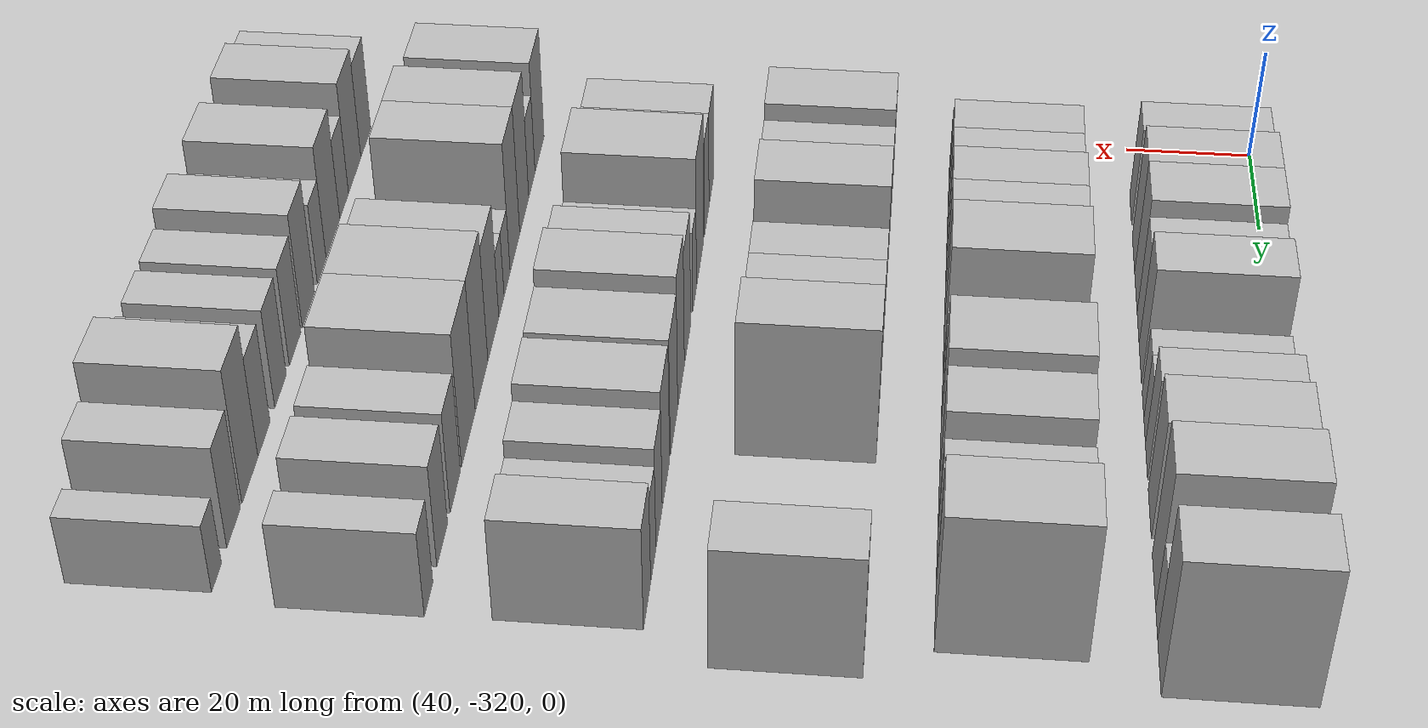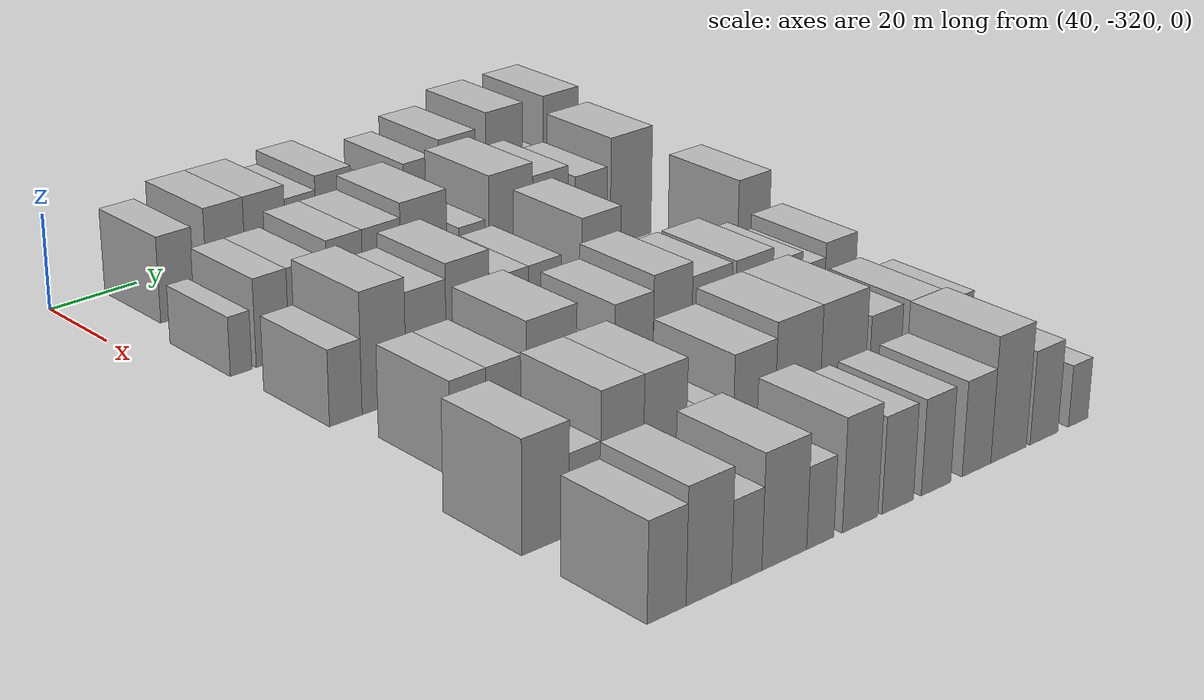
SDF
<sdf version="1.6">
 <world name="default">
  <model name="building_25">
   <static>1</static>
   <pose>50.0000 -303.4869 0 0.000000 0.000000 0.000000</pose>
   <link name="link">
    <pose>0 0 9.00 0 0 0</pose>
    <collision name="collision"><geometry><box><size>20.0000 8.0773 18.0000</size></box></geometry></collision>
    <visual name="visual">
     <cast_shadows>0</cast_shadows>
     <geometry><box><size>20.0000 8.0773 18.0000</size></box></geometry>
     <material>
      <script>
       <uri>model://HANNAS_wall/materials/scripts</uri>
       <uri>model://HANNAS_wall/materials/textures</uri>
       <name>vrc/HANNAS_wall</name>
      </script>
     </material>
    </visual>
   </link>
  </model>
  <model name="building_26">
   <static>1</static>
   <pose>50.0000 -291.7953 0 0.000000 0.000000 0.000000</pose>
   <link name="link">
    <pose>0 0 10.50 0 0 0</pose>
    <collision name="collision"><geometry><box><size>20.0000 9.3060 21.0000</size></box></geometry></collision>
    <visual name="visual">
     <cast_shadows>0</cast_shadows>
     <geometry><box><size>20.0000 9.3060 21.0000</size></box></geometry>
     <material>
      <script>
       <uri>model://HANNAS_wall/materials/scripts</uri>
       <uri>model://HANNAS_wall/materials/textures</uri>
       <name>vrc/HANNAS_wall</name>
      </script>
     </material>
    </visual>
   </link>
  </model>
  <model name="building_27">
   <static>1</static>
   <pose>50.0000 -282.1680 0 0.000000 0.000000 0.000000</pose>
   <link name="link">
    <pose>0 0 10.50 0 0 0</pose>
    <collision name="collision"><geometry><box><size>20.0000 9.9487 21.0000</size></box></geometry></collision>
    <visual name="visual">
     <cast_shadows>0</cast_shadows>
     <geometry><box><size>20.0000 9.9487 21.0000</size></box></geometry>
     <material>
      <script>
       <uri>model://HANNAS_wall/materials/scripts</uri>
       <uri>model://HANNAS_wall/materials/textures</uri>
       <name>vrc/HANNAS_wall</name>
      </script>
     </material>
    </visual>
   </link>
  </model>
  <model name="building_28">
   <static>1</static>
   <pose>50.0000 -273.3792 0 0.000000 0.000000 0.000000</pose>
   <link name="link">
    <pose>0 0 9.00 0 0 0</pose>
    <collision name="collision"><geometry><box><size>20.0000 7.6288 18.0000</size></box></geometry></collision>
    <visual name="visual">
     <cast_shadows>0</cast_shadows>
     <geometry><box><size>20.0000 7.6288 18.0000</size></box></geometry>
     <material>
      <script>
       <uri>model://HANNAS_wall/materials/scripts</uri>
       <uri>model://HANNAS_wall/materials/textures</uri>
       <name>vrc/HANNAS_wall</name>
      </script>
     </material>
    </visual>
   </link>
  </model>
  <model name="building_29">
   <static>1</static>
   <pose>50.0000 -265.0334 0 0.000000 0.000000 0.000000</pose>
   <link name="link">
    <pose>0 0 10.50 0 0 0</pose>
    <collision name="collision"><geometry><box><size>20.0000 9.0628 21.0000</size></box></geometry></collision>
    <visual name="visual">
     <cast_shadows>0</cast_shadows>
     <geometry><box><size>20.0000 9.0628 21.0000</size></box></geometry>
     <material>
      <script>
       <uri>model://HANNAS_wall/materials/scripts</uri>
       <uri>model://HANNAS_wall/materials/textures</uri>
       <name>vrc/HANNAS_wall</name>
      </script>
     </material>
    </visual>
   </link>
  </model>
  <model name="building_30">
   <static>1</static>
   <pose>50.0000 -255.5705 0 0.000000 0.000000 0.000000</pose>
   <link name="link">
    <pose>0 0 6.00 0 0 0</pose>
    <collision name="collision"><geometry><box><size>20.0000 5.8630 12.0000</size></box></geometry></collision>
    <visual name="visual">
     <cast_shadows>0</cast_shadows>
     <geometry><box><size>20.0000 5.8630 12.0000</size></box></geometry>
     <material>
      <script>
       <uri>model://HANNAS_wall/materials/scripts</uri>
       <uri>model://HANNAS_wall/materials/textures</uri>
       <name>vrc/HANNAS_wall</name>
      </script>
     </material>
    </visual>
   </link>
  </model>
  <model name="building_31">
   <static>1</static>
   <pose>50.0000 -249.8530 0 0.000000 0.000000 0.000000</pose>
   <link name="link">
    <pose>0 0 6.00 0 0 0</pose>
    <collision name="collision"><geometry><box><size>20.0000 5.5720 12.0000</size></box></geometry></collision>
    <visual name="visual">
     <cast_shadows>0</cast_shadows>
     <geometry><box><size>20.0000 5.5720 12.0000</size></box></geometry>
     <material>
      <script>
       <uri>model://HANNAS_wall/materials/scripts</uri>
       <uri>model://HANNAS_wall/materials/textures</uri>
       <name>vrc/HANNAS_wall</name>
      </script>
     </material>
    </visual>
   </link>
  </model>
  <model name="building_32">
   <static>1</static>
   <pose>50.0000 -243.3581 0 0.000000 0.000000 0.000000</pose>
   <link name="link">
    <pose>0 0 9.00 0 0 0</pose>
    <collision name="collision"><geometry><box><size>20.0000 7.4179 18.0000</size></box></geometry></collision>
    <visual name="visual">
     <cast_shadows>0</cast_shadows>
     <geometry><box><size>20.0000 7.4179 18.0000</size></box></geometry>
     <material>
      <script>
       <uri>model://HANNAS_wall/materials/scripts</uri>
       <uri>model://HANNAS_wall/materials/textures</uri>
       <name>vrc/HANNAS_wall</name>
      </script>
     </material>
    </visual>
   </link>
  </model>
  <model name="building_33">
   <static>1</static>
   <pose>50.0000 -232.6826 0 0.000000 0.000000 0.000000</pose>
   <link name="link">
    <pose>0 0 10.50 0 0 0</pose>
    <collision name="collision"><geometry><box><size>20.0000 9.9332 21.0000</size></box></geometry></collision>
    <visual name="visual">
     <cast_shadows>0</cast_shadows>
     <geometry><box><size>20.0000 9.9332 21.0000</size></box></geometry>
     <material>
      <script>
       <uri>model://HANNAS_wall/materials/scripts</uri>
       <uri>model://HANNAS_wall/materials/textures</uri>
       <name>vrc/HANNAS_wall</name>
      </script>
     </material>
    </visual>
   </link>
  </model>
  <model name="building_34">
   <static>1</static>
   <pose>50.0000 -219.5905 0 0.000000 0.000000 0.000000</pose>
   <link name="link">
    <pose>0 0 12.00 0 0 0</pose>
    <collision name="collision"><geometry><box><size>20.0000 10.2508 24.0000</size></box></geometry></collision>
    <visual name="visual">
     <cast_shadows>0</cast_shadows>
     <geometry><box><size>20.0000 10.2508 24.0000</size></box></geometry>
     <material>
      <script>
       <uri>model://HANNAS_wall/materials/scripts</uri>
       <uri>model://HANNAS_wall/materials/textures</uri>
       <name>vrc/HANNAS_wall</name>
      </script>
     </material>
    </visual>
   </link>
  </model>
  <model name="building_35">
   <static>1</static>
   <pose>50.0000 -211.6037 0 0.000000 0.000000 0.000000</pose>
   <link name="link">
    <pose>0 0 6.00 0 0 0</pose>
    <collision name="collision"><geometry><box><size>20.0000 5.7229 12.0000</size></box></geometry></collision>
    <visual name="visual">
     <cast_shadows>0</cast_shadows>
     <geometry><box><size>20.0000 5.7229 12.0000</size></box></geometry>
     <material>
      <script>
       <uri>model://HANNAS_wall/materials/scripts</uri>
       <uri>model://HANNAS_wall/materials/textures</uri>
       <name>vrc/HANNAS_wall</name>
      </script>
     </material>
    </visual>
   </link>
  </model>
  <model name="building_36">
   <static>1</static>
   <pose>50.0000 -203.6641 0 0.000000 0.000000 0.000000</pose>
   <link name="link">
    <pose>0 0 12.00 0 0 0</pose>
    <collision name="collision"><geometry><box><size>20.0000 10.1561 24.0000</size></box></geometry></collision>
    <visual name="visual">
     <cast_shadows>0</cast_shadows>
     <geometry><box><size>20.0000 10.1561 24.0000</size></box></geometry>
     <material>
      <script>
       <uri>model://HANNAS_wall/materials/scripts</uri>
       <uri>model://HANNAS_wall/materials/textures</uri>
       <name>vrc/HANNAS_wall</name>
      </script>
     </material>
    </visual>
   </link>
  </model>
  <model name="building_141">
   <static>1</static>
   <pose>79.0000 -308.9826 0 0.000000 0.000000 0.000000</pose>
   <link name="link">
    <pose>0 0 6.00 0 0 0</pose>
    <collision name="collision"><geometry><box><size>20.0000 4.8721 12.0000</size></box></geometry></collision>
    <visual name="visual">
     <cast_shadows>0</cast_shadows>
     <geometry><box><size>20.0000 4.8721 12.0000</size></box></geometry>
     <material>
      <script>
       <uri>model://HANNAS_wall/materials/scripts</uri>
       <uri>model://HANNAS_wall/materials/textures</uri>
       <name>vrc/HANNAS_wall</name>
      </script>
     </material>
    </visual>
   </link>
  </model>
  <model name="building_142">
   <static>1</static>
   <pose>79.0000 -301.7202 0 0.000000 0.000000 0.000000</pose>
   <link name="link">
    <pose>0 0 9.00 0 0 0</pose>
    <collision name="collision"><geometry><box><size>20.0000 7.6529 18.0000</size></box></geometry></collision>
    <visual name="visual">
     <cast_shadows>0</cast_shadows>
     <geometry><box><size>20.0000 7.6529 18.0000</size></box></geometry>
     <material>
      <script>
       <uri>model://HANNAS_wall/materials/scripts</uri>
       <uri>model://HANNAS_wall/materials/textures</uri>
       <name>vrc/HANNAS_wall</name>
      </script>
     </material>
    </visual>
   </link>
  </model>
  <model name="building_143">
   <static>1</static>
   <pose>79.0000 -293.7317 0 0.000000 0.000000 0.000000</pose>
   <link name="link">
    <pose>0 0 9.00 0 0 0</pose>
    <collision name="collision"><geometry><box><size>20.0000 8.3240 18.0000</size></box></geometry></collision>
    <visual name="visual">
     <cast_shadows>0</cast_shadows>
     <geometry><box><size>20.0000 8.3240 18.0000</size></box></geometry>
     <material>
      <script>
       <uri>model://HANNAS_wall/materials/scripts</uri>
       <uri>model://HANNAS_wall/materials/textures</uri>
       <name>vrc/HANNAS_wall</name>
      </script>
     </material>
    </visual>
   </link>
  </model>
  <model name="building_144">
   <static>1</static>
   <pose>79.0000 -284.3257 0 0.000000 0.000000 0.000000</pose>
   <link name="link">
    <pose>0 0 10.50 0 0 0</pose>
    <collision name="collision"><geometry><box><size>20.0000 8.4880 21.0000</size></box></geometry></collision>
    <visual name="visual">
     <cast_shadows>0</cast_shadows>
     <geometry><box><size>20.0000 8.4880 21.0000</size></box></geometry>
     <material>
      <script>
       <uri>model://HANNAS_wall/materials/scripts</uri>
       <uri>model://HANNAS_wall/materials/textures</uri>
       <name>vrc/HANNAS_wall</name>
      </script>
     </material>
    </visual>
   </link>
  </model>
  <model name="building_145">
   <static>1</static>
   <pose>79.0000 -275.4408 0 0.000000 0.000000 0.000000</pose>
   <link name="link">
    <pose>0 0 10.50 0 0 0</pose>
    <collision name="collision"><geometry><box><size>20.0000 9.2820 21.0000</size></box></geometry></collision>
    <visual name="visual">
     <cast_shadows>0</cast_shadows>
     <geometry><box><size>20.0000 9.2820 21.0000</size></box></geometry>
     <material>
      <script>
       <uri>model://HANNAS_wall/materials/scripts</uri>
       <uri>model://HANNAS_wall/materials/textures</uri>
       <name>vrc/HANNAS_wall</name>
      </script>
     </material>
    </visual>
   </link>
  </model>
  <model name="building_146">
   <static>1</static>
   <pose>79.0000 -265.0329 0 0.000000 0.000000 0.000000</pose>
   <link name="link">
    <pose>0 0 12.00 0 0 0</pose>
    <collision name="collision"><geometry><box><size>20.0000 11.5339 24.0000</size></box></geometry></collision>
    <visual name="visual">
     <cast_shadows>0</cast_shadows>
     <geometry><box><size>20.0000 11.5339 24.0000</size></box></geometry>
     <material>
      <script>
       <uri>model://HANNAS_wall/materials/scripts</uri>
       <uri>model://HANNAS_wall/materials/textures</uri>
       <name>vrc/HANNAS_wall</name>
      </script>
     </material>
    </visual>
   </link>
  </model>
  <model name="building_147">
   <static>1</static>
   <pose>79.0000 -252.8595 0 0.000000 0.000000 0.000000</pose>
   <link name="link">
    <pose>0 0 7.50 0 0 0</pose>
    <collision name="collision"><geometry><box><size>20.0000 6.8130 15.0000</size></box></geometry></collision>
    <visual name="visual">
     <cast_shadows>0</cast_shadows>
     <geometry><box><size>20.0000 6.8130 15.0000</size></box></geometry>
     <material>
      <script>
       <uri>model://HANNAS_wall/materials/scripts</uri>
       <uri>model://HANNAS_wall/materials/textures</uri>
       <name>vrc/HANNAS_wall</name>
      </script>
     </material>
    </visual>
   </link>
  </model>
  <model name="building_148">
   <static>1</static>
   <pose>79.0000 -242.6879 0 0.000000 0.000000 0.000000</pose>
   <link name="link">
    <pose>0 0 12.00 0 0 0</pose>
    <collision name="collision"><geometry><box><size>20.0000 11.5302 24.0000</size></box></geometry></collision>
    <visual name="visual">
     <cast_shadows>0</cast_shadows>
     <geometry><box><size>20.0000 11.5302 24.0000</size></box></geometry>
     <material>
      <script>
       <uri>model://HANNAS_wall/materials/scripts</uri>
       <uri>model://HANNAS_wall/materials/textures</uri>
       <name>vrc/HANNAS_wall</name>
      </script>
     </material>
    </visual>
   </link>
  </model>
  <model name="building_149">
   <static>1</static>
   <pose>79.0000 -232.1672 0 0.000000 0.000000 0.000000</pose>
   <link name="link">
    <pose>0 0 10.50 0 0 0</pose>
    <collision name="collision"><geometry><box><size>20.0000 9.5111 21.0000</size></box></geometry></collision>
    <visual name="visual">
     <cast_shadows>0</cast_shadows>
     <geometry><box><size>20.0000 9.5111 21.0000</size></box></geometry>
     <material>
      <script>
       <uri>model://HANNAS_wall/materials/scripts</uri>
       <uri>model://HANNAS_wall/materials/textures</uri>
       <name>vrc/HANNAS_wall</name>
      </script>
     </material>
    </visual>
   </link>
  </model>
  <model name="building_150">
   <static>1</static>
   <pose>79.0000 -220.9929 0 0.000000 0.000000 0.000000</pose>
   <link name="link">
    <pose>0 0 9.00 0 0 0</pose>
    <collision name="collision"><geometry><box><size>20.0000 8.8375 18.0000</size></box></geometry></collision>
    <visual name="visual">
     <cast_shadows>0</cast_shadows>
     <geometry><box><size>20.0000 8.8375 18.0000</size></box></geometry>
     <material>
      <script>
       <uri>model://HANNAS_wall/materials/scripts</uri>
       <uri>model://HANNAS_wall/materials/textures</uri>
       <name>vrc/HANNAS_wall</name>
      </script>
     </material>
    </visual>
   </link>
  </model>
  <model name="building_151">
   <static>1</static>
   <pose>79.0000 -209.7387 0 0.000000 0.000000 0.000000</pose>
   <link name="link">
    <pose>0 0 12.00 0 0 0</pose>
    <collision name="collision"><geometry><box><size>20.0000 11.6710 24.0000</size></box></geometry></collision>
    <visual name="visual">
     <cast_shadows>0</cast_shadows>
     <geometry><box><size>20.0000 11.6710 24.0000</size></box></geometry>
     <material>
      <script>
       <uri>model://HANNAS_wall/materials/scripts</uri>
       <uri>model://HANNAS_wall/materials/textures</uri>
       <name>vrc/HANNAS_wall</name>
      </script>
     </material>
    </visual>
   </link>
  </model>
  <model name="building_250">
   <static>1</static>
   <pose>108.0000 -306.6481 0 0.000000 0.000000 0.000000</pose>
   <link name="link">
    <pose>0 0 7.50 0 0 0</pose>
    <collision name="collision"><geometry><box><size>20.0000 7.3241 15.0000</size></box></geometry></collision>
    <visual name="visual">
     <cast_shadows>0</cast_shadows>
     <geometry><box><size>20.0000 7.3241 15.0000</size></box></geometry>
     <material>
      <script>
       <uri>model://HANNAS_wall/materials/scripts</uri>
       <uri>model://HANNAS_wall/materials/textures</uri>
       <name>vrc/HANNAS_wall</name>
      </script>
     </material>
    </visual>
   </link>
  </model>
  <model name="building_251">
   <static>1</static>
   <pose>108.0000 -297.8866 0 0.000000 0.000000 0.000000</pose>
   <link name="link">
    <pose>0 0 12.00 0 0 0</pose>
    <collision name="collision"><geometry><box><size>20.0000 10.1990 24.0000</size></box></geometry></collision>
    <visual name="visual">
     <cast_shadows>0</cast_shadows>
     <geometry><box><size>20.0000 10.1990 24.0000</size></box></geometry>
     <material>
      <script>
       <uri>model://HANNAS_wall/materials/scripts</uri>
       <uri>model://HANNAS_wall/materials/textures</uri>
       <name>vrc/HANNAS_wall</name>
      </script>
     </material>
    </visual>
   </link>
  </model>
  <model name="building_252">
   <static>1</static>
   <pose>108.0000 -288.0495 0 0.000000 0.000000 0.000000</pose>
   <link name="link">
    <pose>0 0 10.50 0 0 0</pose>
    <collision name="collision"><geometry><box><size>20.0000 9.4752 21.0000</size></box></geometry></collision>
    <visual name="visual">
     <cast_shadows>0</cast_shadows>
     <geometry><box><size>20.0000 9.4752 21.0000</size></box></geometry>
     <material>
      <script>
       <uri>model://HANNAS_wall/materials/scripts</uri>
       <uri>model://HANNAS_wall/materials/textures</uri>
       <name>vrc/HANNAS_wall</name>
      </script>
     </material>
    </visual>
   </link>
  </model>
  <model name="building_253">
   <static>1</static>
   <pose>108.0000 -278.1364 0 0.000000 0.000000 0.000000</pose>
   <link name="link">
    <pose>0 0 12.00 0 0 0</pose>
    <collision name="collision"><geometry><box><size>20.0000 10.3509 24.0000</size></box></geometry></collision>
    <visual name="visual">
     <cast_shadows>0</cast_shadows>
     <geometry><box><size>20.0000 10.3509 24.0000</size></box></geometry>
     <material>
      <script>
       <uri>model://HANNAS_wall/materials/scripts</uri>
       <uri>model://HANNAS_wall/materials/textures</uri>
       <name>vrc/HANNAS_wall</name>
      </script>
     </material>
    </visual>
   </link>
  </model>
  <model name="building_254">
   <static>1</static>
   <pose>108.0000 -267.1380 0 0.000000 0.000000 0.000000</pose>
   <link name="link">
    <pose>0 0 9.00 0 0 0</pose>
    <collision name="collision"><geometry><box><size>20.0000 7.6460 18.0000</size></box></geometry></collision>
    <visual name="visual">
     <cast_shadows>0</cast_shadows>
     <geometry><box><size>20.0000 7.6460 18.0000</size></box></geometry>
     <material>
      <script>
       <uri>model://HANNAS_wall/materials/scripts</uri>
       <uri>model://HANNAS_wall/materials/textures</uri>
       <name>vrc/HANNAS_wall</name>
      </script>
     </material>
    </visual>
   </link>
  </model>
  <model name="building_255">
   <static>1</static>
   <pose>108.0000 -259.2166 0 0.000000 0.000000 0.000000</pose>
   <link name="link">
    <pose>0 0 9.00 0 0 0</pose>
    <collision name="collision"><geometry><box><size>20.0000 8.1967 18.0000</size></box></geometry></collision>
    <visual name="visual">
     <cast_shadows>0</cast_shadows>
     <geometry><box><size>20.0000 8.1967 18.0000</size></box></geometry>
     <material>
      <script>
       <uri>model://HANNAS_wall/materials/scripts</uri>
       <uri>model://HANNAS_wall/materials/textures</uri>
       <name>vrc/HANNAS_wall</name>
      </script>
     </material>
    </visual>
   </link>
  </model>
  <model name="building_256">
   <static>1</static>
   <pose>108.0000 -252.4825 0 0.000000 0.000000 0.000000</pose>
   <link name="link">
    <pose>0 0 6.00 0 0 0</pose>
    <collision name="collision"><geometry><box><size>20.0000 5.2716 12.0000</size></box></geometry></collision>
    <visual name="visual">
     <cast_shadows>0</cast_shadows>
     <geometry><box><size>20.0000 5.2716 12.0000</size></box></geometry>
     <material>
      <script>
       <uri>model://HANNAS_wall/materials/scripts</uri>
       <uri>model://HANNAS_wall/materials/textures</uri>
       <name>vrc/HANNAS_wall</name>
      </script>
     </material>
    </visual>
   </link>
  </model>
  <model name="building_257">
   <static>1</static>
   <pose>108.0000 -244.7892 0 0.000000 0.000000 0.000000</pose>
   <link name="link">
    <pose>0 0 12.00 0 0 0</pose>
    <collision name="collision"><geometry><box><size>20.0000 10.1149 24.0000</size></box></geometry></collision>
    <visual name="visual">
     <cast_shadows>0</cast_shadows>
     <geometry><box><size>20.0000 10.1149 24.0000</size></box></geometry>
     <material>
      <script>
       <uri>model://HANNAS_wall/materials/scripts</uri>
       <uri>model://HANNAS_wall/materials/textures</uri>
       <name>vrc/HANNAS_wall</name>
      </script>
     </material>
    </visual>
   </link>
  </model>
  <model name="building_258">
   <static>1</static>
   <pose>108.0000 -203.0492 0 0.000000 0.000000 0.000000</pose>
   <link name="link">
    <pose>0 0 10.50 0 0 0</pose>
    <collision name="collision"><geometry><box><size>20.0000 9.1217 21.0000</size></box></geometry></collision>
    <visual name="visual">
     <cast_shadows>0</cast_shadows>
     <geometry><box><size>20.0000 9.1217 21.0000</size></box></geometry>
     <material>
      <script>
       <uri>model://HANNAS_wall/materials/scripts</uri>
       <uri>model://HANNAS_wall/materials/textures</uri>
       <name>vrc/HANNAS_wall</name>
      </script>
     </material>
    </visual>
   </link>
  </model>
  <model name="building_356">
   <static>1</static>
   <pose>137.0000 -302.2518 0 0.000000 0.000000 0.000000</pose>
   <link name="link">
    <pose>0 0 9.00 0 0 0</pose>
    <collision name="collision"><geometry><box><size>20.0000 8.1191 18.0000</size></box></geometry></collision>
    <visual name="visual">
     <cast_shadows>0</cast_shadows>
     <geometry><box><size>20.0000 8.1191 18.0000</size></box></geometry>
     <material>
      <script>
       <uri>model://HANNAS_wall/materials/scripts</uri>
       <uri>model://HANNAS_wall/materials/textures</uri>
       <name>vrc/HANNAS_wall</name>
      </script>
     </material>
    </visual>
   </link>
  </model>
  <model name="building_357">
   <static>1</static>
   <pose>137.0000 -294.1426 0 0.000000 0.000000 0.000000</pose>
   <link name="link">
    <pose>0 0 9.00 0 0 0</pose>
    <collision name="collision"><geometry><box><size>20.0000 8.0994 18.0000</size></box></geometry></collision>
    <visual name="visual">
     <cast_shadows>0</cast_shadows>
     <geometry><box><size>20.0000 8.0994 18.0000</size></box></geometry>
     <material>
      <script>
       <uri>model://HANNAS_wall/materials/scripts</uri>
       <uri>model://HANNAS_wall/materials/textures</uri>
       <name>vrc/HANNAS_wall</name>
      </script>
     </material>
    </visual>
   </link>
  </model>
  <model name="building_358">
   <static>1</static>
   <pose>137.0000 -283.1924 0 0.000000 0.000000 0.000000</pose>
   <link name="link">
    <pose>0 0 12.00 0 0 0</pose>
    <collision name="collision"><geometry><box><size>20.0000 11.8010 24.0000</size></box></geometry></collision>
    <visual name="visual">
     <cast_shadows>0</cast_shadows>
     <geometry><box><size>20.0000 11.8010 24.0000</size></box></geometry>
     <material>
      <script>
       <uri>model://HANNAS_wall/materials/scripts</uri>
       <uri>model://HANNAS_wall/materials/textures</uri>
       <name>vrc/HANNAS_wall</name>
      </script>
     </material>
    </visual>
   </link>
  </model>
  <model name="building_359">
   <static>1</static>
   <pose>137.0000 -274.2234 0 0.000000 0.000000 0.000000</pose>
   <link name="link">
    <pose>0 0 7.50 0 0 0</pose>
    <collision name="collision"><geometry><box><size>20.0000 6.1370 15.0000</size></box></geometry></collision>
    <visual name="visual">
     <cast_shadows>0</cast_shadows>
     <geometry><box><size>20.0000 6.1370 15.0000</size></box></geometry>
     <material>
      <script>
       <uri>model://HANNAS_wall/materials/scripts</uri>
       <uri>model://HANNAS_wall/materials/textures</uri>
       <name>vrc/HANNAS_wall</name>
      </script>
     </material>
    </visual>
   </link>
  </model>
  <model name="building_360">
   <static>1</static>
   <pose>137.0000 -263.4145 0 0.000000 0.000000 0.000000</pose>
   <link name="link">
    <pose>0 0 10.50 0 0 0</pose>
    <collision name="collision"><geometry><box><size>20.0000 9.4808 21.0000</size></box></geometry></collision>
    <visual name="visual">
     <cast_shadows>0</cast_shadows>
     <geometry><box><size>20.0000 9.4808 21.0000</size></box></geometry>
     <material>
      <script>
       <uri>model://HANNAS_wall/materials/scripts</uri>
       <uri>model://HANNAS_wall/materials/textures</uri>
       <name>vrc/HANNAS_wall</name>
      </script>
     </material>
    </visual>
   </link>
  </model>
  <model name="building_361">
   <static>1</static>
   <pose>137.0000 -253.8130 0 0.000000 0.000000 0.000000</pose>
   <link name="link">
    <pose>0 0 12.00 0 0 0</pose>
    <collision name="collision"><geometry><box><size>20.0000 9.7223 24.0000</size></box></geometry></collision>
    <visual name="visual">
     <cast_shadows>0</cast_shadows>
     <geometry><box><size>20.0000 9.7223 24.0000</size></box></geometry>
     <material>
      <script>
       <uri>model://HANNAS_wall/materials/scripts</uri>
       <uri>model://HANNAS_wall/materials/textures</uri>
       <name>vrc/HANNAS_wall</name>
      </script>
     </material>
    </visual>
   </link>
  </model>
  <model name="building_362">
   <static>1</static>
   <pose>137.0000 -243.8132 0 0.000000 0.000000 0.000000</pose>
   <link name="link">
    <pose>0 0 10.50 0 0 0</pose>
    <collision name="collision"><geometry><box><size>20.0000 10.2771 21.0000</size></box></geometry></collision>
    <visual name="visual">
     <cast_shadows>0</cast_shadows>
     <geometry><box><size>20.0000 10.2771 21.0000</size></box></geometry>
     <material>
      <script>
       <uri>model://HANNAS_wall/materials/scripts</uri>
       <uri>model://HANNAS_wall/materials/textures</uri>
       <name>vrc/HANNAS_wall</name>
      </script>
     </material>
    </visual>
   </link>
  </model>
  <model name="building_363">
   <static>1</static>
   <pose>137.0000 -232.7411 0 0.000000 0.000000 0.000000</pose>
   <link name="link">
    <pose>0 0 10.50 0 0 0</pose>
    <collision name="collision"><geometry><box><size>20.0000 9.8672 21.0000</size></box></geometry></collision>
    <visual name="visual">
     <cast_shadows>0</cast_shadows>
     <geometry><box><size>20.0000 9.8672 21.0000</size></box></geometry>
     <material>
      <script>
       <uri>model://HANNAS_wall/materials/scripts</uri>
       <uri>model://HANNAS_wall/materials/textures</uri>
       <name>vrc/HANNAS_wall</name>
      </script>
     </material>
    </visual>
   </link>
  </model>
  <model name="building_364">
   <static>1</static>
   <pose>137.0000 -223.7894 0 0.000000 0.000000 0.000000</pose>
   <link name="link">
    <pose>0 0 9.00 0 0 0</pose>
    <collision name="collision"><geometry><box><size>20.0000 8.0362 18.0000</size></box></geometry></collision>
    <visual name="visual">
     <cast_shadows>0</cast_shadows>
     <geometry><box><size>20.0000 8.0362 18.0000</size></box></geometry>
     <material>
      <script>
       <uri>model://HANNAS_wall/materials/scripts</uri>
       <uri>model://HANNAS_wall/materials/textures</uri>
       <name>vrc/HANNAS_wall</name>
      </script>
     </material>
    </visual>
   </link>
  </model>
  <model name="building_365">
   <static>1</static>
   <pose>137.0000 -216.5195 0 0.000000 0.000000 0.000000</pose>
   <link name="link">
    <pose>0 0 7.50 0 0 0</pose>
    <collision name="collision"><geometry><box><size>20.0000 6.5036 15.0000</size></box></geometry></collision>
    <visual name="visual">
     <cast_shadows>0</cast_shadows>
     <geometry><box><size>20.0000 6.5036 15.0000</size></box></geometry>
     <material>
      <script>
       <uri>model://HANNAS_wall/materials/scripts</uri>
       <uri>model://HANNAS_wall/materials/textures</uri>
       <name>vrc/HANNAS_wall</name>
      </script>
     </material>
    </visual>
   </link>
  </model>
  <model name="building_366">
   <static>1</static>
   <pose>137.0000 -208.8971 0 0.000000 0.000000 0.000000</pose>
   <link name="link">
    <pose>0 0 9.00 0 0 0</pose>
    <collision name="collision"><geometry><box><size>20.0000 8.7412 18.0000</size></box></geometry></collision>
    <visual name="visual">
     <cast_shadows>0</cast_shadows>
     <geometry><box><size>20.0000 8.7412 18.0000</size></box></geometry>
     <material>
      <script>
       <uri>model://HANNAS_wall/materials/scripts</uri>
       <uri>model://HANNAS_wall/materials/textures</uri>
       <name>vrc/HANNAS_wall</name>
      </script>
     </material>
    </visual>
   </link>
  </model>
  <model name="building_468">
   <static>1</static>
   <pose>166.0000 -310.1964 0 0.000000 0.000000 0.000000</pose>
   <link name="link">
    <pose>0 0 10.50 0 0 0</pose>
    <collision name="collision"><geometry><box><size>20.0000 10.2462 21.0000</size></box></geometry></collision>
    <visual name="visual">
     <cast_shadows>0</cast_shadows>
     <geometry><box><size>20.0000 10.2462 21.0000</size></box></geometry>
     <material>
      <script>
       <uri>model://HANNAS_wall/materials/scripts</uri>
       <uri>model://HANNAS_wall/materials/textures</uri>
       <name>vrc/HANNAS_wall</name>
      </script>
     </material>
    </visual>
   </link>
  </model>
  <model name="building_469">
   <static>1</static>
   <pose>166.0000 -301.6137 0 0.000000 0.000000 0.000000</pose>
   <link name="link">
    <pose>0 0 7.50 0 0 0</pose>
    <collision name="collision"><geometry><box><size>20.0000 6.9193 15.0000</size></box></geometry></collision>
    <visual name="visual">
     <cast_shadows>0</cast_shadows>
     <geometry><box><size>20.0000 6.9193 15.0000</size></box></geometry>
     <material>
      <script>
       <uri>model://HANNAS_wall/materials/scripts</uri>
       <uri>model://HANNAS_wall/materials/textures</uri>
       <name>vrc/HANNAS_wall</name>
      </script>
     </material>
    </visual>
   </link>
  </model>
  <model name="building_470">
   <static>1</static>
   <pose>166.0000 -293.3113 0 0.000000 0.000000 0.000000</pose>
   <link name="link">
    <pose>0 0 12.00 0 0 0</pose>
    <collision name="collision"><geometry><box><size>20.0000 9.6855 24.0000</size></box></geometry></collision>
    <visual name="visual">
     <cast_shadows>0</cast_shadows>
     <geometry><box><size>20.0000 9.6855 24.0000</size></box></geometry>
     <material>
      <script>
       <uri>model://HANNAS_wall/materials/scripts</uri>
       <uri>model://HANNAS_wall/materials/textures</uri>
       <name>vrc/HANNAS_wall</name>
      </script>
     </material>
    </visual>
   </link>
  </model>
  <model name="building_471">
   <static>1</static>
   <pose>166.0000 -283.5004 0 0.000000 0.000000 0.000000</pose>
   <link name="link">
    <pose>0 0 12.00 0 0 0</pose>
    <collision name="collision"><geometry><box><size>20.0000 9.9363 24.0000</size></box></geometry></collision>
    <visual name="visual">
     <cast_shadows>0</cast_shadows>
     <geometry><box><size>20.0000 9.9363 24.0000</size></box></geometry>
     <material>
      <script>
       <uri>model://HANNAS_wall/materials/scripts</uri>
       <uri>model://HANNAS_wall/materials/textures</uri>
       <name>vrc/HANNAS_wall</name>
      </script>
     </material>
    </visual>
   </link>
  </model>
  <model name="building_472">
   <static>1</static>
   <pose>166.0000 -275.5334 0 0.000000 0.000000 0.000000</pose>
   <link name="link">
    <pose>0 0 6.00 0 0 0</pose>
    <collision name="collision"><geometry><box><size>20.0000 5.9977 12.0000</size></box></geometry></collision>
    <visual name="visual">
     <cast_shadows>0</cast_shadows>
     <geometry><box><size>20.0000 5.9977 12.0000</size></box></geometry>
     <material>
      <script>
       <uri>model://HANNAS_wall/materials/scripts</uri>
       <uri>model://HANNAS_wall/materials/textures</uri>
       <name>vrc/HANNAS_wall</name>
      </script>
     </material>
    </visual>
   </link>
  </model>
  <model name="building_473">
   <static>1</static>
   <pose>166.0000 -269.9344 0 0.000000 0.000000 0.000000</pose>
   <link name="link">
    <pose>0 0 6.00 0 0 0</pose>
    <collision name="collision"><geometry><box><size>20.0000 5.2004 12.0000</size></box></geometry></collision>
    <visual name="visual">
     <cast_shadows>0</cast_shadows>
     <geometry><box><size>20.0000 5.2004 12.0000</size></box></geometry>
     <material>
      <script>
       <uri>model://HANNAS_wall/materials/scripts</uri>
       <uri>model://HANNAS_wall/materials/textures</uri>
       <name>vrc/HANNAS_wall</name>
      </script>
     </material>
    </visual>
   </link>
  </model>
  <model name="building_474">
   <static>1</static>
   <pose>166.0000 -262.1590 0 0.000000 0.000000 0.000000</pose>
   <link name="link">
    <pose>0 0 10.50 0 0 0</pose>
    <collision name="collision"><geometry><box><size>20.0000 10.3503 21.0000</size></box></geometry></collision>
    <visual name="visual">
     <cast_shadows>0</cast_shadows>
     <geometry><box><size>20.0000 10.3503 21.0000</size></box></geometry>
     <material>
      <script>
       <uri>model://HANNAS_wall/materials/scripts</uri>
       <uri>model://HANNAS_wall/materials/textures</uri>
       <name>vrc/HANNAS_wall</name>
      </script>
     </material>
    </visual>
   </link>
  </model>
  <model name="building_475">
   <static>1</static>
   <pose>166.0000 -251.2642 0 0.000000 0.000000 0.000000</pose>
   <link name="link">
    <pose>0 0 12.00 0 0 0</pose>
    <collision name="collision"><geometry><box><size>20.0000 11.4394 24.0000</size></box></geometry></collision>
    <visual name="visual">
     <cast_shadows>0</cast_shadows>
     <geometry><box><size>20.0000 11.4394 24.0000</size></box></geometry>
     <material>
      <script>
       <uri>model://HANNAS_wall/materials/scripts</uri>
       <uri>model://HANNAS_wall/materials/textures</uri>
       <name>vrc/HANNAS_wall</name>
      </script>
     </material>
    </visual>
   </link>
  </model>
  <model name="building_476">
   <static>1</static>
   <pose>166.0000 -239.6000 0 0.000000 0.000000 0.000000</pose>
   <link name="link">
    <pose>0 0 12.00 0 0 0</pose>
    <collision name="collision"><geometry><box><size>20.0000 11.8892 24.0000</size></box></geometry></collision>
    <visual name="visual">
     <cast_shadows>0</cast_shadows>
     <geometry><box><size>20.0000 11.8892 24.0000</size></box></geometry>
     <material>
      <script>
       <uri>model://HANNAS_wall/materials/scripts</uri>
       <uri>model://HANNAS_wall/materials/textures</uri>
       <name>vrc/HANNAS_wall</name>
      </script>
     </material>
    </visual>
   </link>
  </model>
  <model name="building_477">
   <static>1</static>
   <pose>166.0000 -228.4104 0 0.000000 0.000000 0.000000</pose>
   <link name="link">
    <pose>0 0 9.00 0 0 0</pose>
    <collision name="collision"><geometry><box><size>20.0000 8.4899 18.0000</size></box></geometry></collision>
    <visual name="visual">
     <cast_shadows>0</cast_shadows>
     <geometry><box><size>20.0000 8.4899 18.0000</size></box></geometry>
     <material>
      <script>
       <uri>model://HANNAS_wall/materials/scripts</uri>
       <uri>model://HANNAS_wall/materials/textures</uri>
       <name>vrc/HANNAS_wall</name>
      </script>
     </material>
    </visual>
   </link>
  </model>
  <model name="building_478">
   <static>1</static>
   <pose>166.0000 -217.9512 0 0.000000 0.000000 0.000000</pose>
   <link name="link">
    <pose>0 0 9.00 0 0 0</pose>
    <collision name="collision"><geometry><box><size>20.0000 8.4285 18.0000</size></box></geometry></collision>
    <visual name="visual">
     <cast_shadows>0</cast_shadows>
     <geometry><box><size>20.0000 8.4285 18.0000</size></box></geometry>
     <material>
      <script>
       <uri>model://HANNAS_wall/materials/scripts</uri>
       <uri>model://HANNAS_wall/materials/textures</uri>
       <name>vrc/HANNAS_wall</name>
      </script>
     </material>
    </visual>
   </link>
  </model>
  <model name="building_479">
   <static>1</static>
   <pose>166.0000 -207.5107 0 0.000000 0.000000 0.000000</pose>
   <link name="link">
    <pose>0 0 7.50 0 0 0</pose>
    <collision name="collision"><geometry><box><size>20.0000 6.4525 15.0000</size></box></geometry></collision>
    <visual name="visual">
     <cast_shadows>0</cast_shadows>
     <geometry><box><size>20.0000 6.4525 15.0000</size></box></geometry>
     <material>
      <script>
       <uri>model://HANNAS_wall/materials/scripts</uri>
       <uri>model://HANNAS_wall/materials/textures</uri>
       <name>vrc/HANNAS_wall</name>
      </script>
     </material>
    </visual>
   </link>
  </model>
  <model name="building_582">
   <static>1</static>
   <pose>195.0000 -310.8196 0 0.000000 0.000000 0.000000</pose>
   <link name="link">
    <pose>0 0 9.00 0 0 0</pose>
    <collision name="collision"><geometry><box><size>20.0000 8.3562 18.0000</size></box></geometry></collision>
    <visual name="visual">
     <cast_shadows>0</cast_shadows>
     <geometry><box><size>20.0000 8.3562 18.0000</size></box></geometry>
     <material>
      <script>
       <uri>model://HANNAS_wall/materials/scripts</uri>
       <uri>model://HANNAS_wall/materials/textures</uri>
       <name>vrc/HANNAS_wall</name>
      </script>
     </material>
    </visual>
   </link>
  </model>
  <model name="building_583">
   <static>1</static>
   <pose>195.0000 -301.6523 0 0.000000 0.000000 0.000000</pose>
   <link name="link">
    <pose>0 0 10.50 0 0 0</pose>
    <collision name="collision"><geometry><box><size>20.0000 9.9784 21.0000</size></box></geometry></collision>
    <visual name="visual">
     <cast_shadows>0</cast_shadows>
     <geometry><box><size>20.0000 9.9784 21.0000</size></box></geometry>
     <material>
      <script>
       <uri>model://HANNAS_wall/materials/scripts</uri>
       <uri>model://HANNAS_wall/materials/textures</uri>
       <name>vrc/HANNAS_wall</name>
      </script>
     </material>
    </visual>
   </link>
  </model>
  <model name="building_584">
   <static>1</static>
   <pose>195.0000 -293.2234 0 0.000000 0.000000 0.000000</pose>
   <link name="link">
    <pose>0 0 7.50 0 0 0</pose>
    <collision name="collision"><geometry><box><size>20.0000 6.8793 15.0000</size></box></geometry></collision>
    <visual name="visual">
     <cast_shadows>0</cast_shadows>
     <geometry><box><size>20.0000 6.8793 15.0000</size></box></geometry>
     <material>
      <script>
       <uri>model://HANNAS_wall/materials/scripts</uri>
       <uri>model://HANNAS_wall/materials/textures</uri>
       <name>vrc/HANNAS_wall</name>
      </script>
     </material>
    </visual>
   </link>
  </model>
  <model name="building_585">
   <static>1</static>
   <pose>195.0000 -284.5949 0 0.000000 0.000000 0.000000</pose>
   <link name="link">
    <pose>0 0 10.50 0 0 0</pose>
    <collision name="collision"><geometry><box><size>20.0000 10.3777 21.0000</size></box></geometry></collision>
    <visual name="visual">
     <cast_shadows>0</cast_shadows>
     <geometry><box><size>20.0000 10.3777 21.0000</size></box></geometry>
     <material>
      <script>
       <uri>model://HANNAS_wall/materials/scripts</uri>
       <uri>model://HANNAS_wall/materials/textures</uri>
       <name>vrc/HANNAS_wall</name>
      </script>
     </material>
    </visual>
   </link>
  </model>
  <model name="building_586">
   <static>1</static>
   <pose>195.0000 -276.1641 0 0.000000 0.000000 0.000000</pose>
   <link name="link">
    <pose>0 0 7.50 0 0 0</pose>
    <collision name="collision"><geometry><box><size>20.0000 6.4840 15.0000</size></box></geometry></collision>
    <visual name="visual">
     <cast_shadows>0</cast_shadows>
     <geometry><box><size>20.0000 6.4840 15.0000</size></box></geometry>
     <material>
      <script>
       <uri>model://HANNAS_wall/materials/scripts</uri>
       <uri>model://HANNAS_wall/materials/textures</uri>
       <name>vrc/HANNAS_wall</name>
      </script>
     </material>
    </visual>
   </link>
  </model>
  <model name="building_587">
   <static>1</static>
   <pose>195.0000 -266.5767 0 0.000000 0.000000 0.000000</pose>
   <link name="link">
    <pose>0 0 10.50 0 0 0</pose>
    <collision name="collision"><geometry><box><size>20.0000 8.6908 21.0000</size></box></geometry></collision>
    <visual name="visual">
     <cast_shadows>0</cast_shadows>
     <geometry><box><size>20.0000 8.6908 21.0000</size></box></geometry>
     <material>
      <script>
       <uri>model://HANNAS_wall/materials/scripts</uri>
       <uri>model://HANNAS_wall/materials/textures</uri>
       <name>vrc/HANNAS_wall</name>
      </script>
     </material>
    </visual>
   </link>
  </model>
  <model name="building_588">
   <static>1</static>
   <pose>195.0000 -257.2859 0 0.000000 0.000000 0.000000</pose>
   <link name="link">
    <pose>0 0 9.00 0 0 0</pose>
    <collision name="collision"><geometry><box><size>20.0000 7.8909 18.0000</size></box></geometry></collision>
    <visual name="visual">
     <cast_shadows>0</cast_shadows>
     <geometry><box><size>20.0000 7.8909 18.0000</size></box></geometry>
     <material>
      <script>
       <uri>model://HANNAS_wall/materials/scripts</uri>
       <uri>model://HANNAS_wall/materials/textures</uri>
       <name>vrc/HANNAS_wall</name>
      </script>
     </material>
    </visual>
   </link>
  </model>
  <model name="building_589">
   <static>1</static>
   <pose>195.0000 -247.5521 0 0.000000 0.000000 0.000000</pose>
   <link name="link">
    <pose>0 0 9.00 0 0 0</pose>
    <collision name="collision"><geometry><box><size>20.0000 7.5766 18.0000</size></box></geometry></collision>
    <visual name="visual">
     <cast_shadows>0</cast_shadows>
     <geometry><box><size>20.0000 7.5766 18.0000</size></box></geometry>
     <material>
      <script>
       <uri>model://HANNAS_wall/materials/scripts</uri>
       <uri>model://HANNAS_wall/materials/textures</uri>
       <name>vrc/HANNAS_wall</name>
      </script>
     </material>
    </visual>
   </link>
  </model>
  <model name="building_590">
   <static>1</static>
   <pose>195.0000 -236.9652 0 0.000000 0.000000 0.000000</pose>
   <link name="link">
    <pose>0 0 9.00 0 0 0</pose>
    <collision name="collision"><geometry><box><size>20.0000 7.5971 18.0000</size></box></geometry></collision>
    <visual name="visual">
     <cast_shadows>0</cast_shadows>
     <geometry><box><size>20.0000 7.5971 18.0000</size></box></geometry>
     <material>
      <script>
       <uri>model://HANNAS_wall/materials/scripts</uri>
       <uri>model://HANNAS_wall/materials/textures</uri>
       <name>vrc/HANNAS_wall</name>
      </script>
     </material>
    </visual>
   </link>
  </model>
  <model name="building_591">
   <static>1</static>
   <pose>195.0000 -228.3345 0 0.000000 0.000000 0.000000</pose>
   <link name="link">
    <pose>0 0 12.00 0 0 0</pose>
    <collision name="collision"><geometry><box><size>20.0000 9.6644 24.0000</size></box></geometry></collision>
    <visual name="visual">
     <cast_shadows>0</cast_shadows>
     <geometry><box><size>20.0000 9.6644 24.0000</size></box></geometry>
     <material>
      <script>
       <uri>model://HANNAS_wall/materials/scripts</uri>
       <uri>model://HANNAS_wall/materials/textures</uri>
       <name>vrc/HANNAS_wall</name>
      </script>
     </material>
    </visual>
   </link>
  </model>
  <model name="building_592">
   <static>1</static>
   <pose>195.0000 -218.6148 0 0.000000 0.000000 0.000000</pose>
   <link name="link">
    <pose>0 0 9.00 0 0 0</pose>
    <collision name="collision"><geometry><box><size>20.0000 7.7751 18.0000</size></box></geometry></collision>
    <visual name="visual">
     <cast_shadows>0</cast_shadows>
     <geometry><box><size>20.0000 7.7751 18.0000</size></box></geometry>
     <material>
      <script>
       <uri>model://HANNAS_wall/materials/scripts</uri>
       <uri>model://HANNAS_wall/materials/textures</uri>
       <name>vrc/HANNAS_wall</name>
      </script>
     </material>
    </visual>
   </link>
  </model>
  <model name="building_593">
   <static>1</static>
   <pose>195.0000 -208.9787 0 0.000000 0.000000 0.000000</pose>
   <link name="link">
    <pose>0 0 6.00 0 0 0</pose>
    <collision name="collision"><geometry><box><size>20.0000 5.4971 12.0000</size></box></geometry></collision>
    <visual name="visual">
     <cast_shadows>0</cast_shadows>
     <geometry><box><size>20.0000 5.4971 12.0000</size></box></geometry>
     <material>
      <script>
       <uri>model://HANNAS_wall/materials/scripts</uri>
       <uri>model://HANNAS_wall/materials/textures</uri>
       <name>vrc/HANNAS_wall</name>
      </script>
     </material>
    </visual>
   </link>
  </model>
 </world>
</sdf>
